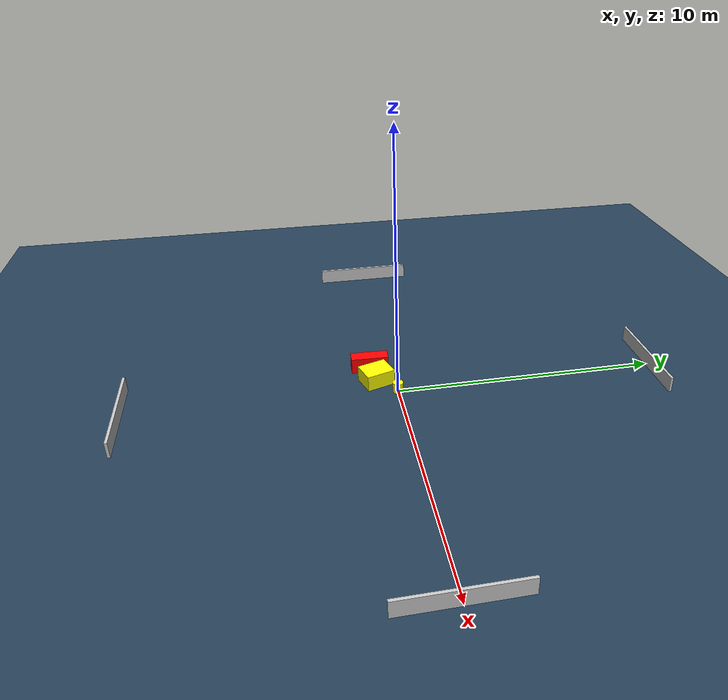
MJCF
<?xml version="1.0" ?>
<mujoco model="generated_environment">
  <option timestep="0.01" integrator="RK4" cone="elliptic"/>
  <default>
    <geom density="1"/>
  </default>
  <asset>
    <texture builtin="gradient" height="3072" name="skybox" rgb1="0.3 0.5 0.7" rgb2="0 0 0" type="skybox" width="512"/>
    <texture builtin="checker" height="300" name="groundplane" rgb1="0.2 0.3 0.4" rgb2="0.1 0.2 0.3" type="2d" width="300"/>
    <material name="groundplane" reflectance="0.2" texrepeat="5 5" texture="groundplane"/>
  </asset>
  <worldbody>
    <light dir="0 0 -1" directional="true" pos="0 0 1.5"/>
    <geom condim="3" friction="0.5 0.005 0.001" material="groundplane" name="floor" pos="0 0 0" size="0 0 0.05" type="plane"/>
    <body name="walls">
      <geom name="wall_1" condim="4" pos="-10.0 0.0 0.3" rgba="0.800000011920929 0.800000011920929 0.800000011920929 1.0" size="0.05 2.0 0.3" type="box"/>
      <geom name="wall_2" condim="4" pos="10.0 0.0 0.3" rgba="0.800000011920929 0.800000011920929 0.800000011920929 1.0" size="0.05 2.0 0.3" type="box"/>
      <geom name="wall_3" condim="4" pos="0.0 -10.0 0.3" rgba="0.800000011920929 0.800000011920929 0.800000011920929 1.0" size="2.0 0.05 0.3" type="box"/>
      <geom name="wall_4" condim="4" pos="0.0 10.0 0.3" rgba="0.800000011920929 0.800000011920929 0.800000011920929 1.0" size="2.0 0.05 0.3" type="box"/>
    </body>
    <body name="robot">
      <joint name="joint_x" type="slide" pos="0 0 0" axis="1 0 0"/>
      <joint name="joint_y" type="slide" pos="0 0 0" axis="0 1 0"/>
      <geom name="robot" type="cylinder" pos="0.0 0.0 0.2" size="0.2 0.2 0.0" mass="5.0" friction="1.0 0.005 0.0001" condim="4" rgba="1.0 1.0 0.0 1.0"/>
    </body>
    <body name="obstacle_1_movable">
      <geom name="obstacle_1_movable" condim="4" pos="-0.8056235353831231 -0.6938231145159599 0.3" euler="0 0 198.14407031921792" friction="0.0 0.005 0.001" rgba="1.0 1.0 0.0 1.0" size="0.4519838213873456 0.5606694658746139 0.3" type="box" mass="0.1"/>
      <joint type="free"/>
    </body>
    <body name="obstacle_2_static">
      <geom name="obstacle_2_static" condim="4" pos="-1.8042176568870882 -0.822752887457542 0.3" euler="0 0 358.1614836978436" friction="0.0 0.005 0.001" rgba="1.0 0.0 0.0 1.0" size="0.2600906525455473 0.7165929613837025 0.3" type="box"/>
    </body>
  </worldbody>
  <actuator>
    <motor name="actuator_x" joint="joint_x" gear="1" ctrlrange="-1 1"/>
    <motor name="actuator_y" joint="joint_y" gear="1" ctrlrange="-1 1"/>
  </actuator>
</mujoco>
